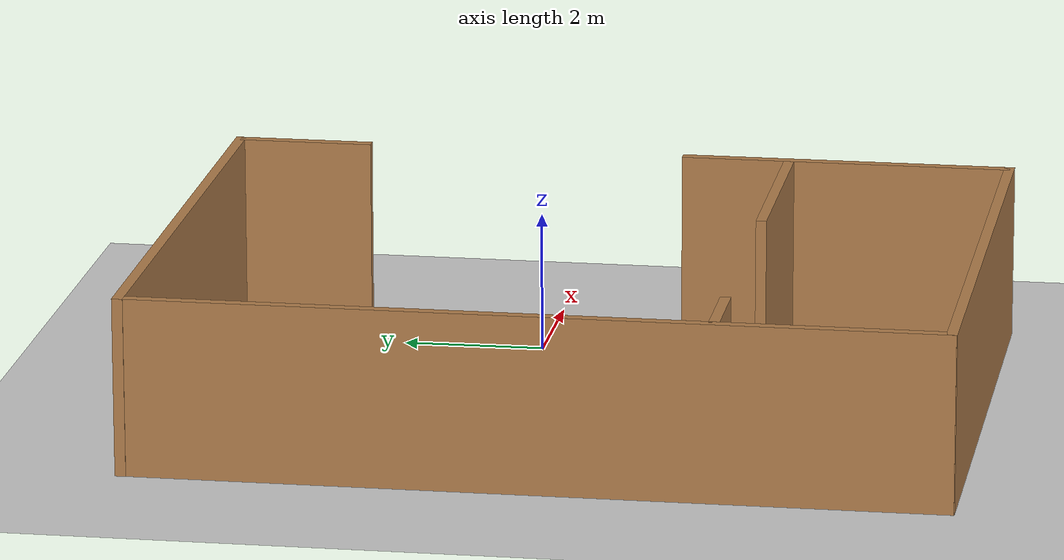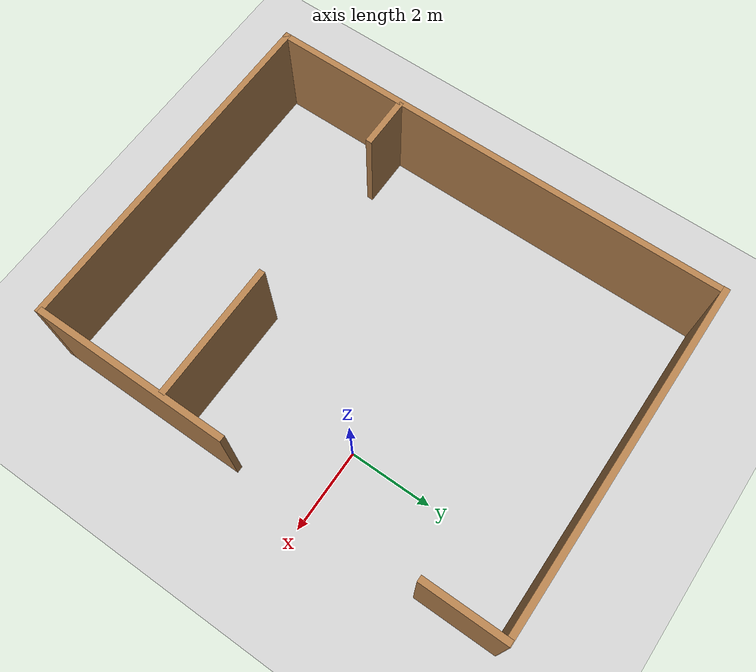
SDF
<sdf version='1.4'>
  <world name='default'>
    <!-- A global light source -->
    <include>
      <uri>model://sun</uri>
    </include>

    <!-- A ground plane -->
    <include>
      <uri>model://ground_plane</uri>
    </include>

    <physics type="ode">
      <real_time_update_rate>1000.0</real_time_update_rate>
      <max_step_size>0.001</max_step_size>
      <real_time_factor>1</real_time_factor>
      <ode>
        <solver>
          <type>quick</type>
          <iters>150</iters>
          <precon_iters>0</precon_iters>
          <sor>1.400000</sor>
          <use_dynamic_moi_rescaling>1</use_dynamic_moi_rescaling>
        </solver>
        <constraints>
          <cfm>0.00001</cfm>
          <erp>0.2</erp>
          <contact_max_correcting_vel>2000.000000</contact_max_correcting_vel>
          <contact_surface_layer>0.01000</contact_surface_layer>
        </constraints>
      </ode>
    </physics>

    <!-- A turtlebot symbol -->
    <include>
      <uri>model://campus</uri>
    </include>

    <scene>
      <ambient>0.4 0.4 0.4 1</ambient>
      <background>0.7 0.7 0.7 1</background>
      <shadows>true</shadows>
    </scene>

    <gui fullscreen='0'>
      <camera name='user_camera'>
        <pose>0.0 0.0 17.0 0 1.5708 0</pose>
        <view_controller>orbit</view_controller>
      </camera>
    </gui>
  </world>
</sdf>

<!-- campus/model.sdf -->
<sdf version='1.7'>
  <model name='world2'>
    <pose>-2.49581 -0.903654 0 0 -0 0</pose>
    <link name='Wall_0'>
      <collision name='Wall_0_Collision'>
        <geometry>
          <box>
            <size>11.25 0.15 2.5</size>
          </box>
        </geometry>
        <pose>0 0 1.25 0 -0 0</pose>
      </collision>
      <visual name='Wall_0_Visual'>
        <pose>0 0 1.25 0 -0 0</pose>
        <geometry>
          <box>
            <size>11.25 0.15 2.5</size>
          </box>
        </geometry>
        <material>
          <script>
            <uri>file://media/materials/scripts/gazebo.material</uri>
            <name>Gazebo/Wood</name>
          </script>
          <ambient>1 1 1 1</ambient>
        </material>
        <meta>
          <layer>0</layer>
        </meta>
      </visual>
      <pose>-4.17097 -0.068059 0 0 -0 1.5708</pose>
    </link>
    <link name='Wall_10'>
      <collision name='Wall_10_Collision'>
        <geometry>
          <box>
            <size>1.25 0.15 2.5</size>
          </box>
        </geometry>
        <pose>0 0 1.25 0 -0 0</pose>
      </collision>
      <visual name='Wall_10_Visual'>
        <pose>0 0 1.25 0 -0 0</pose>
        <geometry>
          <box>
            <size>1.25 0.15 2.5</size>
          </box>
        </geometry>
        <material>
          <script>
            <uri>file://media/materials/scripts/gazebo.material</uri>
            <name>Gazebo/Wood</name>
          </script>
          <ambient>1 1 1 1</ambient>
        </material>
        <meta>
          <layer>0</layer>
        </meta>
      </visual>
      <pose>-3.54103 -2.44722 0 0 -0 3.14159</pose>
    </link>
    <link name='Wall_12'>
      <collision name='Wall_12_Collision'>
        <geometry>
          <box>
            <size>3.25 0.15 2.5</size>
          </box>
        </geometry>
        <pose>0 0 1.25 0 -0 0</pose>
      </collision>
      <visual name='Wall_12_Visual'>
        <pose>0 0 1.25 0 -0 0</pose>
        <geometry>
          <box>
            <size>3.25 0.15 2.5</size>
          </box>
        </geometry>
        <material>
          <script>
            <uri>file://media/materials/scripts/gazebo.material</uri>
            <name>Gazebo/Wood</name>
          </script>
          <ambient>1 1 1 1</ambient>
        </material>
        <meta>
          <layer>0</layer>
        </meta>
      </visual>
      <pose>2.51674 -2.44722 0 0 -0 0</pose>
    </link>
    <link name='Wall_2'>
      <collision name='Wall_2_Collision'>
        <geometry>
          <box>
            <size>8.5 0.15 2.5</size>
          </box>
        </geometry>
        <pose>0 0 1.25 0 -0 0</pose>
      </collision>
      <visual name='Wall_2_Visual'>
        <pose>0 0 1.25 0 -0 0</pose>
        <geometry>
          <box>
            <size>8.5 0.15 2.5</size>
          </box>
        </geometry>
        <material>
          <script>
            <uri>file://media/materials/scripts/gazebo.material</uri>
            <name>Gazebo/Wood</name>
          </script>
          <ambient>1 1 1 1</ambient>
        </material>
        <meta>
          <layer>0</layer>
        </meta>
      </visual>
      <pose>-0.002639 5.6286 0 0 -0 3.14159</pose>
    </link>
    <link name='Wall_4'>
      <collision name='Wall_4_Collision'>
        <geometry>
          <box>
            <size>8.49472 0.15 2.5</size>
          </box>
        </geometry>
        <pose>0 0 1.25 0 -0 0</pose>
      </collision>
      <visual name='Wall_4_Visual'>
        <pose>0 0 1.25 0 -0 0</pose>
        <geometry>
          <box>
            <size>8.49472 0.15 2.5</size>
          </box>
        </geometry>
        <material>
          <script>
            <uri>file://media/materials/scripts/gazebo.material</uri>
            <name>Gazebo/Wood</name>
          </script>
          <ambient>1 1 1 1</ambient>
        </material>
        <meta>
          <layer>0</layer>
        </meta>
      </visual>
      <pose>0.005278 -5.6286 0 0 -0 3.14159</pose>
    </link>
    <link name='Wall_6'>
      <collision name='Wall_6_Collision'>
        <geometry>
          <box>
            <size>4.75 0.15 2.5</size>
          </box>
        </geometry>
        <pose>0 0 1.25 0 -0 0</pose>
      </collision>
      <visual name='Wall_6_Visual'>
        <pose>0 0 1.25 0 -0 0</pose>
        <geometry>
          <box>
            <size>4.75 0.15 2.5</size>
          </box>
        </geometry>
        <material>
          <script>
            <uri>file://media/materials/scripts/gazebo.material</uri>
            <name>Gazebo/Wood</name>
          </script>
          <ambient>1 1 1 1</ambient>
        </material>
        <meta>
          <layer>0</layer>
        </meta>
      </visual>
      <pose>4.17764 -3.26742 0 0 -0 -1.5708</pose>
    </link>
    <link name='Wall_8'>
      <collision name='Wall_8_Collision'>
        <geometry>
          <box>
            <size>2 0.15 2.5</size>
          </box>
        </geometry>
        <pose>0 0 1.25 0 -0 0</pose>
      </collision>
      <visual name='Wall_8_Visual'>
        <pose>0 0 1.25 0 -0 0</pose>
        <geometry>
          <box>
            <size>2 0.15 2.5</size>
          </box>
        </geometry>
        <material>
          <script>
            <uri>file://media/materials/scripts/gazebo.material</uri>
            <name>Gazebo/Wood</name>
          </script>
          <ambient>1 1 1 1</ambient>
        </material>
        <meta>
          <layer>0</layer>
        </meta>
      </visual>
      <pose>4.17764 4.68868 0 0 -0 1.5708</pose>
    </link>
    <static>1</static>
  </model>
</sdf>
